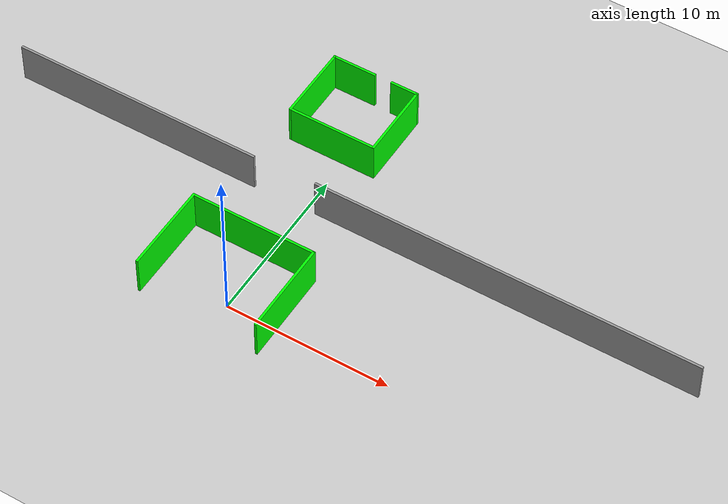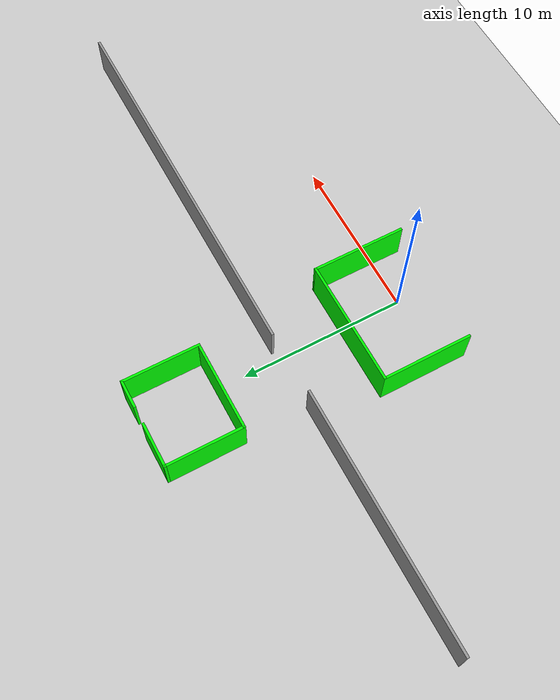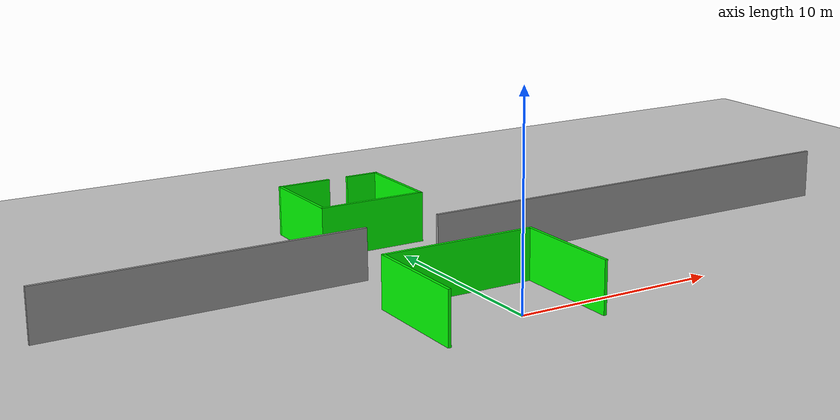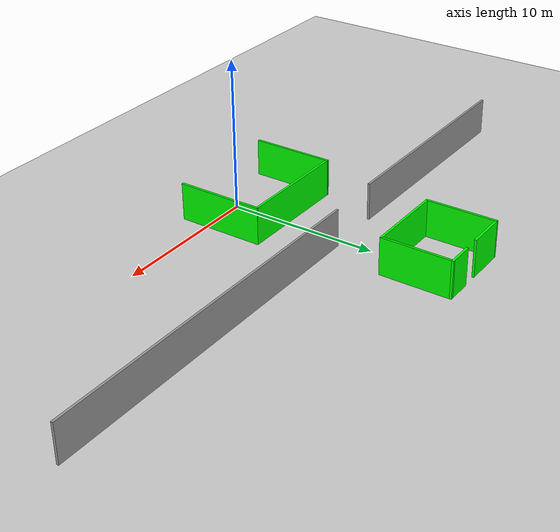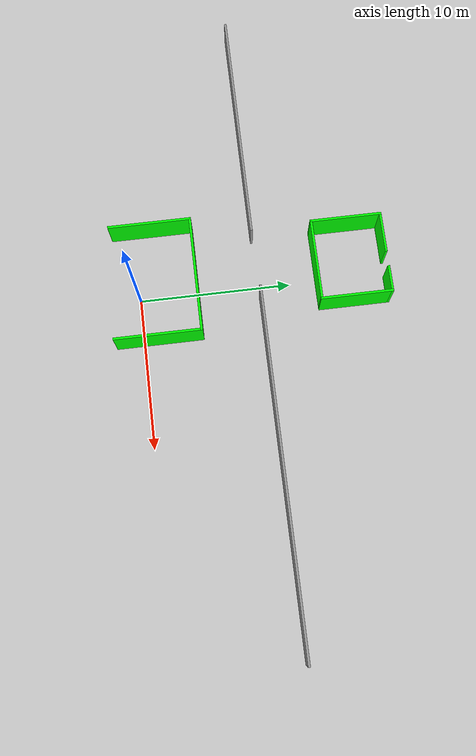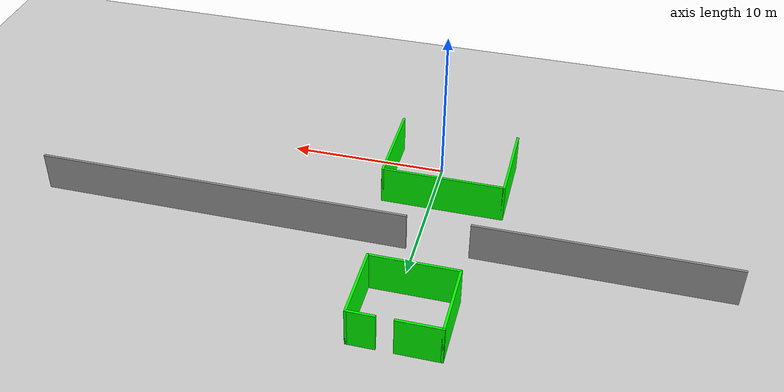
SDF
<sdf version="1.6">
 <world name="default">
  <light name="sun" type="directional">
   <pose>0 0 10 0 -0 0</pose>
   <diffuse>0.8 0.8 0.8 1</diffuse>
   <specular>0.2 0.2 0.2 1</specular>
   <attenuation>
    <range>1000</range>
    <constant>0.9</constant>
    <linear>0.01</linear>
    <quadratic>0.001</quadratic>
   </attenuation>
   <direction>-0.5 0.1 -0.9</direction>
  </light>
  <model name="ground_plane">
   <static>1</static>
   <link name="link">
    <collision name="collision">
     <geometry><plane><normal>0 0 1</normal><size>100 100</size></plane></geometry>
     <surface><friction><ode><mu>100</mu><mu2>50</mu2></ode></friction></surface>
    </collision>
    <visual name="visual">
     <cast_shadows>0</cast_shadows>
     <geometry><plane><normal>0 0 1</normal><size>100 100</size></plane></geometry>
     <material>
      <script><uri>file://media/materials/scripts/gazebo.material</uri><name>Gazebo/Grey</name></script>
     </material>
    </visual>
   </link>
  </model>
  <gravity>0 0 -9.8</gravity>
  <magnetic_field>6e-06 2.3e-05 -4.2e-05</magnetic_field>
  <atmosphere type="adiabatic"/>
  <physics name="default_physics" default="0" type="ode">
   <max_step_size>0.001</max_step_size>
   <real_time_factor>1</real_time_factor>
   <real_time_update_rate>1000</real_time_update_rate>
  </physics>
  <scene><ambient>0.4 0.4 0.4 1</ambient><background>0.7 0.7 0.7 1</background><shadows>1</shadows></scene>
  <spherical_coordinates>
   <surface_model>EARTH_WGS84</surface_model>
   <latitude_deg>0</latitude_deg>
   <longitude_deg>0</longitude_deg>
   <elevation>0</elevation>
   <heading_deg>0</heading_deg>
  </spherical_coordinates>
  <model name="trap_0">
   <pose>2.63516 7.31619 0 0 -0 0</pose>
   <link name="Wall_10">
    <collision name="Wall_10_Collision">
     <geometry><box><size>4.75 0.15 2.5</size></box></geometry>
     <pose>0 0 1.25 0 -0 0</pose>
    </collision>
    <visual name="Wall_10_Visual">
     <pose>0 0 1.25 0 -0 0</pose>
     <geometry><box><size>4.75 0.15 2.5</size></box></geometry>
     <material>
      <script><uri>file://media/materials/scripts/gazebo.material</uri><name>Gazebo/Grey</name></script>
      <ambient>0 1 0 1</ambient>
     </material>
     <meta><layer>0</layer></meta>
    </visual>
    <pose>-0.74991 6.7651 0 0 -0 1.5708</pose>
   </link>
   <link name="Wall_12">
    <collision name="Wall_12_Collision">
     <geometry><box><size>2.75 0.15 2.5</size></box></geometry>
     <pose>0 0 1.25 0 -0 0</pose>
    </collision>
    <visual name="Wall_12_Visual">
     <pose>0 0 1.25 0 -0 0</pose>
     <geometry><box><size>2.75 0.15 2.5</size></box></geometry>
     <material>
      <script><uri>file://media/materials/scripts/gazebo.material</uri><name>Gazebo/Grey</name></script>
      <ambient>0 1 0 1</ambient>
     </material>
     <meta><layer>0</layer></meta>
    </visual>
    <pose>-4.79991 9.0651 0 0 -0 0</pose>
   </link>
   <link name="Wall_14">
    <collision name="Wall_14_Collision">
     <geometry><box><size>1.75 0.15 2.5</size></box></geometry>
     <pose>0 0 1.25 0 -0 0</pose>
    </collision>
    <visual name="Wall_14_Visual">
     <pose>0 0 1.25 0 -0 0</pose>
     <geometry><box><size>1.75 0.15 2.5</size></box></geometry>
     <material>
      <script><uri>file://media/materials/scripts/gazebo.material</uri><name>Gazebo/Grey</name></script>
      <ambient>0 1 0 1</ambient>
     </material>
     <meta><layer>0</layer></meta>
    </visual>
    <pose>-1.54991 9.0651 0 0 -0 3.14159</pose>
   </link>
   <link name="Wall_32">
    <collision name="Wall_32_Collision">
     <geometry><box><size>15.5 0.15 2.5</size></box></geometry>
     <pose>0 0 1.25 0 -0 0</pose>
    </collision>
    <visual name="Wall_32_Visual">
     <pose>0 0 1.25 0 -0 0</pose>
     <geometry><box><size>15.5 0.15 2.5</size></box></geometry>
     <material>
      <script><uri>file://media/materials/scripts/gazebo.material</uri><name>Gazebo/Grey</name></script>
      <ambient>1 1 1 1</ambient>
     </material>
     <meta><layer>0</layer></meta>
    </visual>
    <pose>-13.6522 0.483875 0 0 -0 0</pose>
   </link>
   <link name="Wall_34">
    <collision name="Wall_34_Collision">
     <geometry><box><size>23.5 0.15 2.5</size></box></geometry>
     <pose>0 0 1.25 0 -0 0</pose>
    </collision>
    <visual name="Wall_34_Visual">
     <pose>0 0 1.25 0 -0 0</pose>
     <geometry><box><size>23.5 0.15 2.5</size></box></geometry>
     <material>
      <script><uri>file://media/materials/scripts/gazebo.material</uri><name>Gazebo/Grey</name></script>
      <ambient>1 1 1 1</ambient>
     </material>
     <meta><layer>0</layer></meta>
    </visual>
    <pose>9.65217 0.623005 0 0 -0 0</pose>
   </link>
   <link name="Wall_4">
    <collision name="Wall_4_Collision">
     <geometry><box><size>5.5 0.15 2.5</size></box></geometry>
     <pose>0 0 1.25 0 -0 0</pose>
    </collision>
    <visual name="Wall_4_Visual">
     <pose>0 0 1.25 0 -0 0</pose>
     <geometry><box><size>5.5 0.15 2.5</size></box></geometry>
     <material>
      <script><uri>file://media/materials/scripts/gazebo.material</uri><name>Gazebo/Grey</name></script>
      <ambient>0 1 0 1</ambient>
     </material>
     <meta><layer>0</layer></meta>
    </visual>
    <pose>-7.21081 -6.1401 0 0 -0 1.5708</pose>
   </link>
   <link name="Wall_5">
    <collision name="Wall_5_Collision">
     <geometry><box><size>7.75 0.15 2.5</size></box></geometry>
     <pose>0 0 1.25 0 -0 0</pose>
    </collision>
    <visual name="Wall_5_Visual">
     <pose>0 0 1.25 0 -0 0</pose>
     <geometry><box><size>7.75 0.15 2.5</size></box></geometry>
     <material>
      <script><uri>file://media/materials/scripts/gazebo.material</uri><name>Gazebo/Grey</name></script>
      <ambient>0 1 0 1</ambient>
     </material>
     <meta><layer>0</layer></meta>
    </visual>
    <pose>-3.41081 -3.4651 0 0 -0 0</pose>
   </link>
   <link name="Wall_6">
    <collision name="Wall_6_Collision">
     <geometry><box><size>5.75 0.15 2.5</size></box></geometry>
     <pose>0 0 1.25 0 -0 0</pose>
    </collision>
    <visual name="Wall_6_Visual">
     <pose>0 0 1.25 0 -0 0</pose>
     <geometry><box><size>5.75 0.15 2.5</size></box></geometry>
     <material>
      <script><uri>file://media/materials/scripts/gazebo.material</uri><name>Gazebo/Grey</name></script>
      <ambient>0 1 0 1</ambient>
     </material>
     <meta><layer>0</layer></meta>
    </visual>
    <pose>0.389189 -6.2651 0 0 -0 -1.5708</pose>
   </link>
   <link name="Wall_8">
    <collision name="Wall_8_Collision">
     <geometry><box><size>4.75 0.15 2.5</size></box></geometry>
     <pose>0 0 1.25 0 -0 0</pose>
    </collision>
    <visual name="Wall_8_Visual">
     <pose>0 0 1.25 0 -0 0</pose>
     <geometry><box><size>4.75 0.15 2.5</size></box></geometry>
     <material>
      <script><uri>file://media/materials/scripts/gazebo.material</uri><name>Gazebo/Grey</name></script>
      <ambient>0 1 0 1</ambient>
     </material>
     <meta><layer>0</layer></meta>
    </visual>
    <pose>-6.09991 6.7651 0 0 -0 -1.5708</pose>
   </link>
   <link name="Wall_9">
    <collision name="Wall_9_Collision">
     <geometry><box><size>5.5 0.15 2.5</size></box></geometry>
     <pose>0 0 1.25 0 -0 0</pose>
    </collision>
    <visual name="Wall_9_Visual">
     <pose>0 0 1.25 0 -0 0</pose>
     <geometry><box><size>5.5 0.15 2.5</size></box></geometry>
     <material>
      <script><uri>file://media/materials/scripts/gazebo.material</uri><name>Gazebo/Grey</name></script>
      <ambient>0 1 0 1</ambient>
     </material>
     <meta><layer>0</layer></meta>
    </visual>
    <pose>-3.42491 4.4651 0 0 -0 0</pose>
   </link>
   <static>1</static>
  </model>
 </world>
</sdf>
